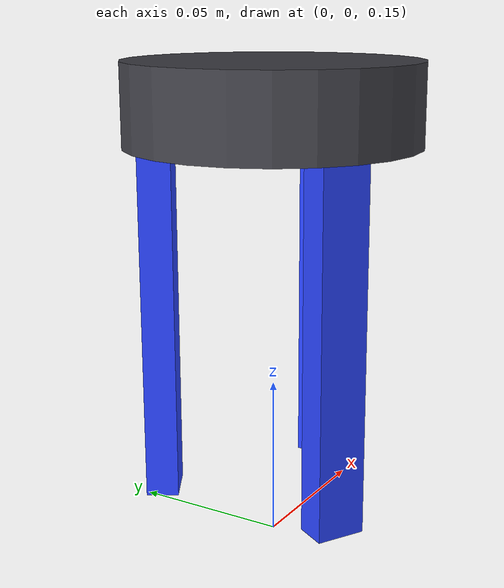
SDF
<?xml version="1.0" encoding="UTF-8"?>
<sdf version='1.9'>
  <model name='gripper_3finger'>
    <pose>0 0 0.30 0 0 0</pose>
    <self_collide>false</self_collide>
    <static>false</static>

    <link name="gripper_3finger/palm">
      <pose>0 0 -0.0125 0 0 0</pose>
      <gravity>true</gravity>
      <self_collide>false</self_collide>
      <velocity_decay/>
      <inertial>
        <mass>0.015</mass>
        <inertia>
          <ixx>8.375e-6</ixx>
          <iyy>8.375e-6</iyy>
          <izz>1.519e-5</izz>
        </inertia>
      </inertial>
      <collision name="gripper_3finger/palm_collision">
        <geometry>
          <cylinder><radius>0.045</radius><length>0.025</length></cylinder>
        </geometry>
      </collision>
      <visual name="gripper_3finger/palm_visual">
        <geometry>
          <cylinder><radius>0.045</radius><length>0.025</length></cylinder>
        </geometry>
        <material>
          <ambient>0.15 0.15 0.17 1</ambient>
          <diffuse>0.25 0.25 0.28 1</diffuse>
          <specular>0.3 0.3 0.3 1</specular>
        </material>
      </visual>
    </link>

    <!-- Finger 0 - mount angle 0 deg -->
    <link name="gripper_3finger/finger_0">
      <pose>0.035 0 -0.025 0 0 0</pose>
      <gravity>true</gravity>
      <velocity_decay/>
      <inertial>
        <mass>0.01</mass>
        <inertia>
          <ixx>2.2e-6</ixx>
          <iyy>2.2e-6</iyy>
          <izz>2.5e-7</izz>
        </inertia>
      </inertial>
      <collision name="gripper_3finger/finger_0_collision">
        <pose>0 0 -0.055 0 0 0</pose>
        <geometry>
          <box><size>0.01 0.015 0.11</size></box>
        </geometry>
      </collision>
      <visual name="gripper_3finger/finger_0_visual">
        <pose>0 0 -0.055 0 0 0</pose>
        <geometry>
          <box><size>0.01 0.015 0.11</size></box>
        </geometry>
        <material>
          <ambient>0.1 0.2 0.9 1</ambient>
          <diffuse>0.15 0.25 0.95 1</diffuse>
        </material>
      </visual>
      <sensor name="gripper_3finger/finger_0_contact_sensor" type="contact">
        <always_on>1</always_on>
        <update_rate>100</update_rate>
        <contact>
          <collision>gripper_3finger/finger_0_collision</collision>
          <topic>/gripper_3finger/finger_0_contact</topic>
        </contact>
      </sensor>
    </link>

    <!-- Finger 1 - mount angle 120 deg -->
    <link name="gripper_3finger/finger_1">
      <pose>-0.0175 0.03031 -0.025 0 0 2.0944</pose>
      <gravity>true</gravity>
      <velocity_decay/>
      <inertial>
        <mass>0.01</mass>
        <inertia>
          <ixx>2.2e-6</ixx>
          <iyy>2.2e-6</iyy>
          <izz>2.5e-7</izz>
        </inertia>
      </inertial>
      <collision name="gripper_3finger/finger_1_collision">
        <pose>0 0 -0.055 0 0 0</pose>
        <geometry>
          <box><size>0.01 0.015 0.11</size></box>
        </geometry>
      </collision>
      <visual name="gripper_3finger/finger_1_visual">
        <pose>0 0 -0.055 0 0 0</pose>
        <geometry>
          <box><size>0.01 0.015 0.11</size></box>
        </geometry>
        <material>
          <ambient>0.1 0.2 0.9 1</ambient>
          <diffuse>0.15 0.25 0.95 1</diffuse>
        </material>
      </visual>
      <sensor name="gripper_3finger/finger_1_contact_sensor" type="contact">
        <always_on>1</always_on>
        <update_rate>100</update_rate>
        <contact>
          <collision>gripper_3finger/finger_1_collision</collision>
          <topic>/gripper_3finger/finger_1_contact</topic>
        </contact>
      </sensor>
    </link>

    <!-- Finger 2 - mount angle 240 deg -->
    <link name="gripper_3finger/finger_2">
      <pose>-0.0175 -0.03031 -0.025 0 0 4.1888</pose>
      <gravity>true</gravity>
      <velocity_decay/>
      <inertial>
        <mass>0.01</mass>
        <inertia>
          <ixx>2.2e-6</ixx>
          <iyy>2.2e-6</iyy>
          <izz>2.5e-7</izz>
        </inertia>
      </inertial>
      <collision name="gripper_3finger/finger_2_collision">
        <pose>0 0 -0.055 0 0 0</pose>
        <geometry>
          <box><size>0.01 0.015 0.11</size></box>
        </geometry>
      </collision>
      <visual name="gripper_3finger/finger_2_visual">
        <pose>0 0 -0.055 0 0 0</pose>
        <geometry>
          <box><size>0.01 0.015 0.11</size></box>
        </geometry>
        <material>
          <ambient>0.1 0.2 0.9 1</ambient>
          <diffuse>0.15 0.25 0.95 1</diffuse>
        </material>
      </visual>
      <sensor name="gripper_3finger/finger_2_contact_sensor" type="contact">
        <always_on>1</always_on>
        <update_rate>100</update_rate>
        <contact>
          <collision>gripper_3finger/finger_2_collision</collision>
          <topic>/gripper_3finger/finger_2_contact</topic>
        </contact>
      </sensor>
    </link>

  </model>
</sdf>
